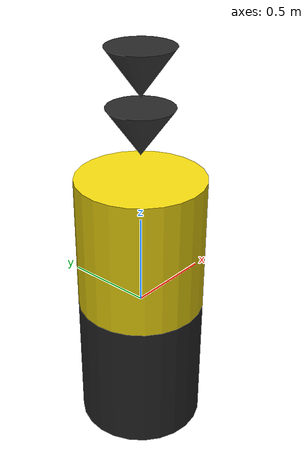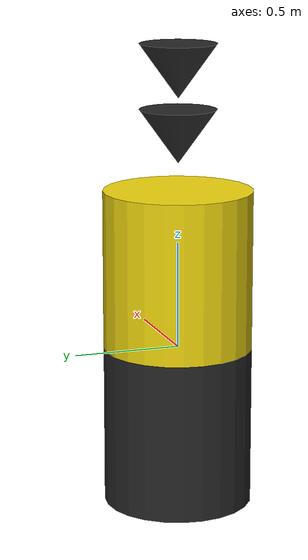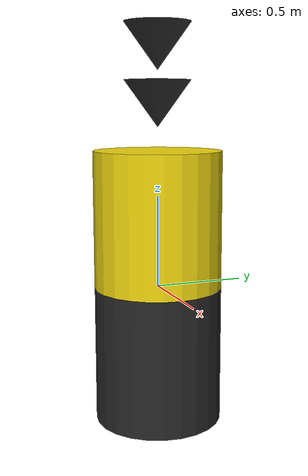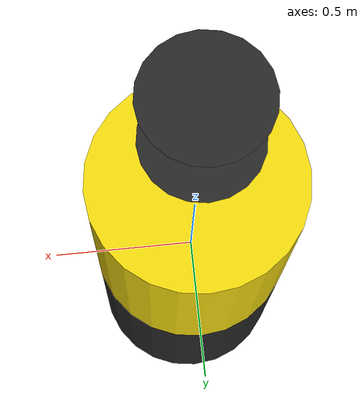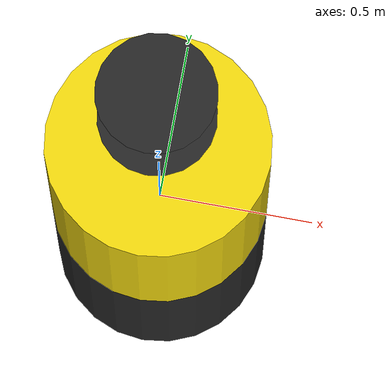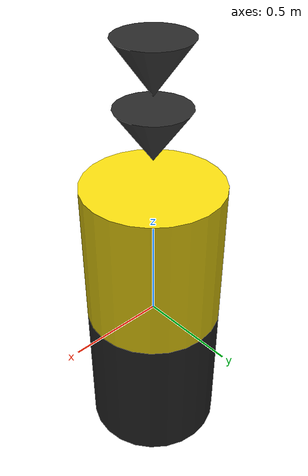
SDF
<?xml version="1.0" ?>
<sdf version="1.9">
  <model name="cardinal_south">
    <static>true</static>
    <link name="link">
      <!-- Mast Top (Yellow) -->
      <collision name="mast_top_collision">
        <pose>0 0 0.375 0 0 0</pose>
        <geometry>
          <cylinder>
            <radius>0.35</radius>
            <length>0.75</length>
          </cylinder>
        </geometry>
      </collision>
      <visual name="mast_top">
        <pose>0 0 0.375 0 0 0</pose>
        <geometry>
          <cylinder>
            <radius>0.35</radius>
            <length>0.75</length>
          </cylinder>
        </geometry>
        <material>
          <ambient>0.85 0.75 0.05 1</ambient>
          <diffuse>0.95 0.85 0.05 1</diffuse>
        </material>
      </visual>

      <!-- Mast Bottom (Black) -->
      <collision name="mast_bottom_collision">
        <pose>0 0 -0.375 0 0 0</pose>
        <geometry>
          <cylinder>
            <radius>0.35</radius>
            <length>0.75</length>
          </cylinder>
        </geometry>
      </collision>
      <visual name="mast_bottom">
        <pose>0 0 -0.375 0 0 0</pose>
        <geometry>
          <cylinder>
            <radius>0.35</radius>
            <length>0.75</length>
          </cylinder>
        </geometry>
        <material>
          <ambient>0.1 0.1 0.1 1</ambient>
          <diffuse>0.15 0.15 0.15 1</diffuse>
        </material>
      </visual>

      <!-- Topmark Cones (Both pointing DOWN) -->
      <visual name="cone_lower">
        <pose>0 0 1.0 0 3.14159265359 0</pose>
        <geometry>
          <cone>
            <radius>0.18</radius>
            <length>0.25</length>
          </cone>
        </geometry>
        <material>
          <ambient>0.1 0.1 0.1 1</ambient>
          <diffuse>0.15 0.15 0.15 1</diffuse>
        </material>
      </visual>

      <visual name="cone_upper">
        <pose>0 0 1.3 0 3.14159265359 0</pose>
        <geometry>
          <cone>
            <radius>0.18</radius>
            <length>0.25</length>
          </cone>
        </geometry>
        <material>
          <ambient>0.1 0.1 0.1 1</ambient>
          <diffuse>0.15 0.15 0.15 1</diffuse>
        </material>
      </visual>
    </link>
  </model>
</sdf>
